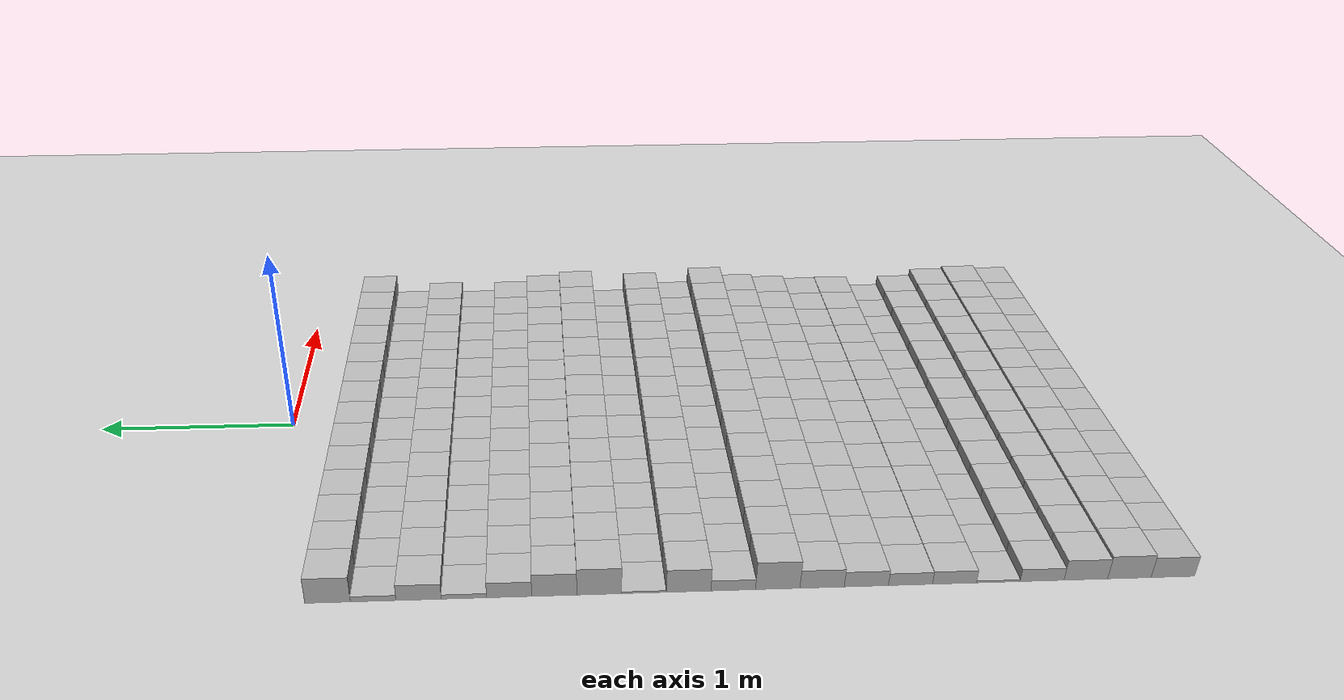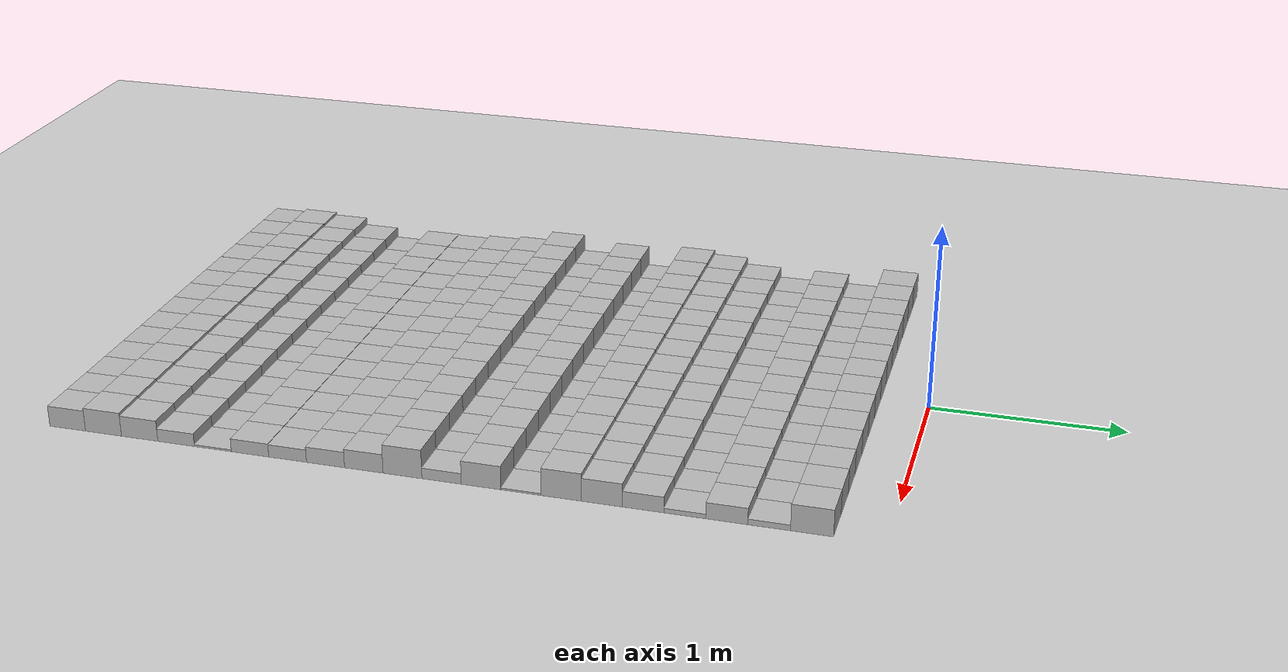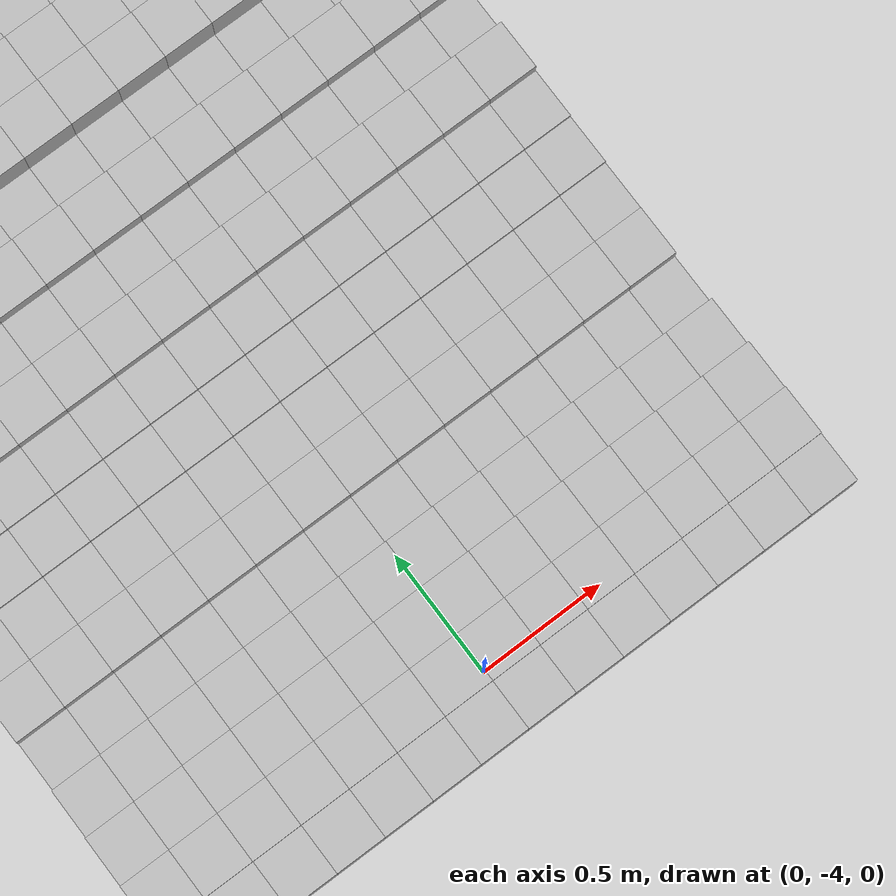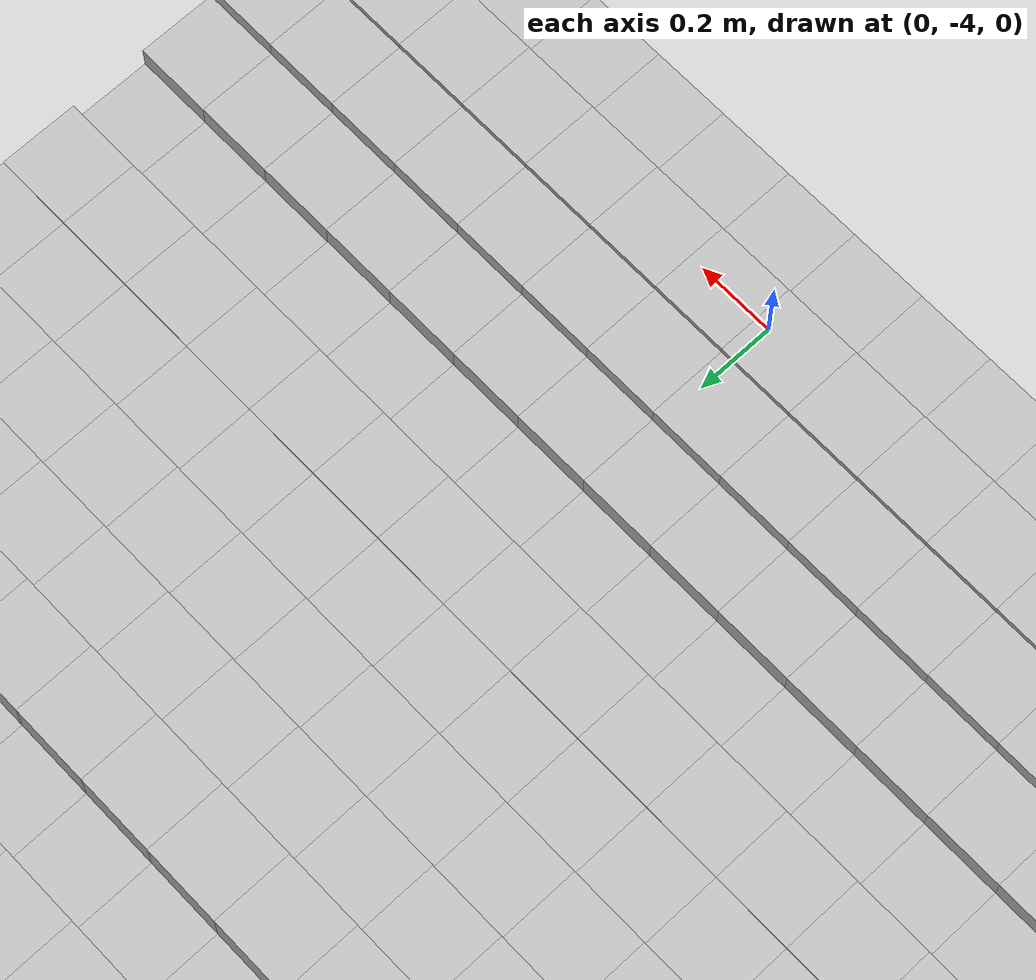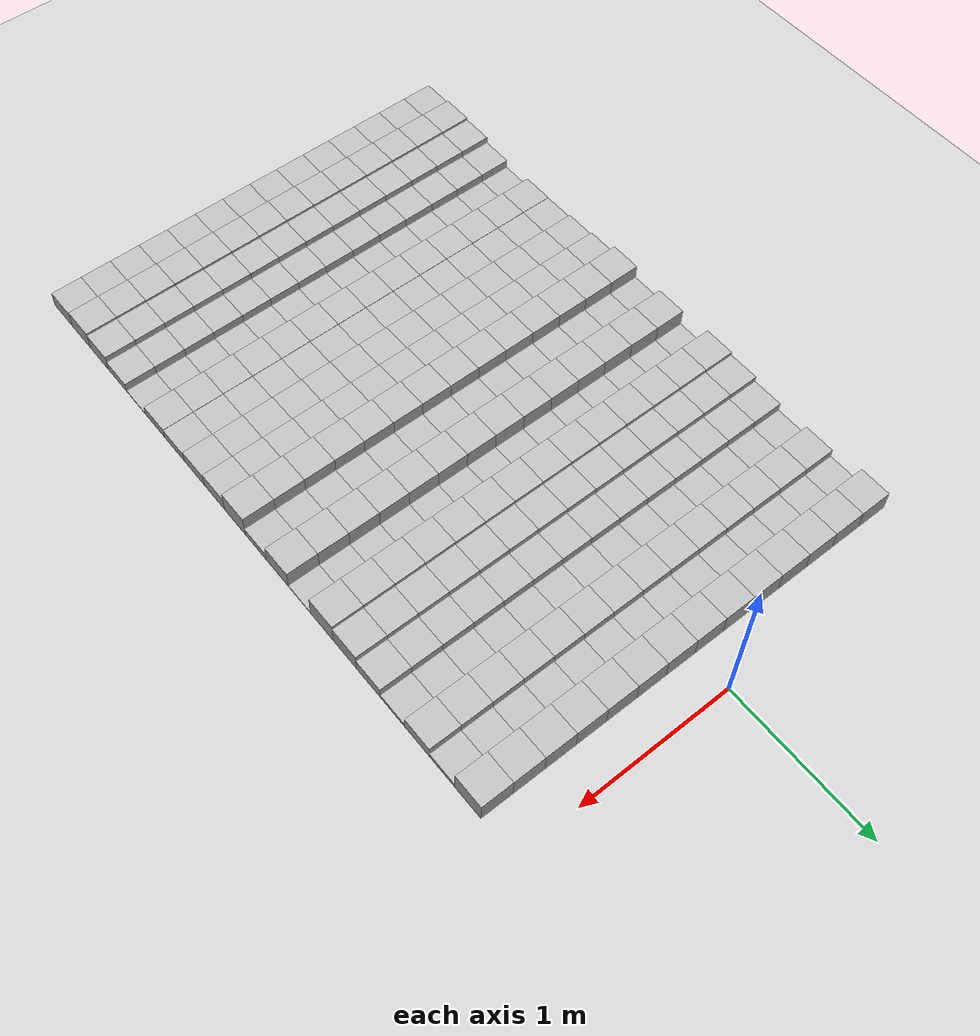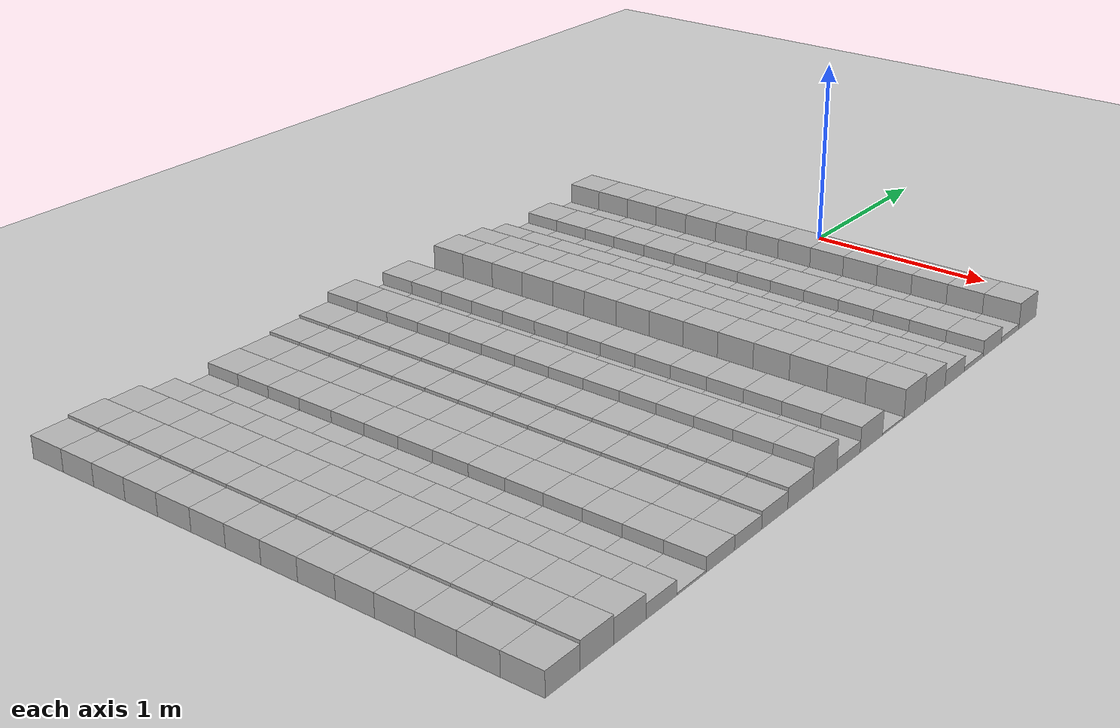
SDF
<?xml version="1.0" ?>
<sdf version="1.6">
  <world name="default">
  <gravity>0 0 -9.81</gravity>
  <physics name="ode_400iters" type="ode" default="true">
    <!-- the combination of 2 params below provides real time factor speed for simulation -->
    <!-- max_real_time_factor = real_time_update_rate * max_step_size -->
    <!-- min_real_time_factor depends only from max_step_size -->
    <real_time_update_rate>1000</real_time_update_rate>
    <max_step_size>0.0002</max_step_size>
      <ode>
        <solver>
          <type>quick</type>
          <iters>900</iters>
          <!-- sor is number for more accurate results of convergence (сходимость)-->
           <sor>0.9</sor>
        </solver>
        <constraints>
      </constraints>
      </ode>
    </physics>
    <include>
      <uri>model://strirus_gazebo/maps/Ground_plane</uri>
    </include>
    <include>
      <uri>model://sun</uri>
    </include>
        <include>
		<uri>model://strirus_gazebo/maps/Generated_terrain</uri>
      <name>Terrain</name>
      <pose>0 -0.35 0 0 0 0</pose>
    </include>
  </world>
</sdf>
